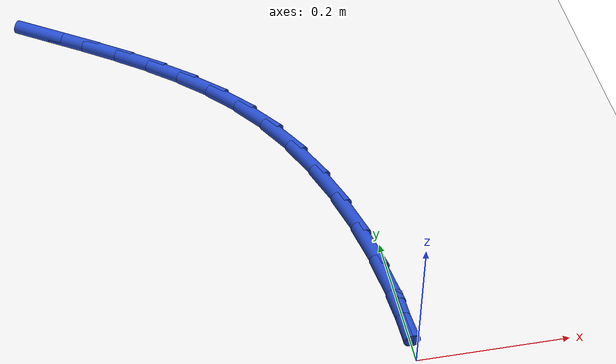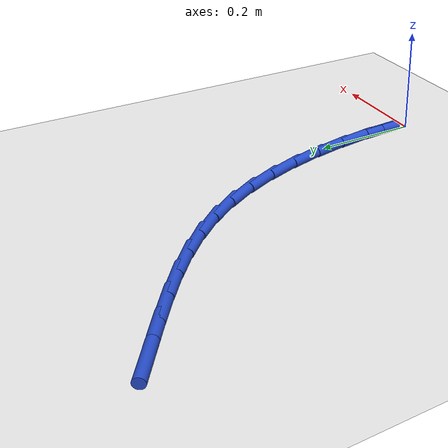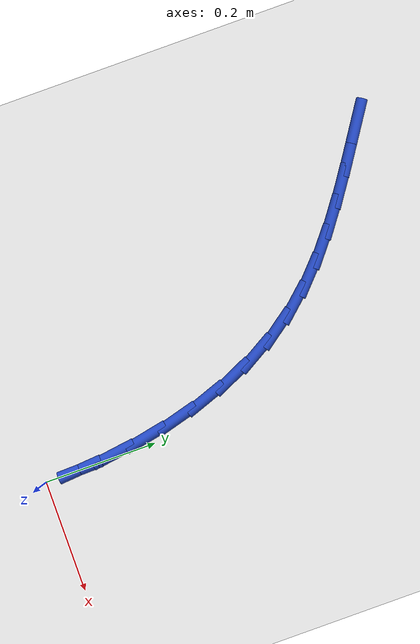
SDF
<sdf version="1.6">
 <world name="default">
  <model name="ground_plane">
   <static>1</static>
   <link name="link">
    <collision name="collision">
     <geometry><plane><normal>0 0 1</normal><size>100 100</size></plane></geometry>
     <surface><friction><ode><mu>100</mu><mu2>50</mu2></ode></friction></surface>
    </collision>
    <visual name="visual">
     <cast_shadows>0</cast_shadows>
     <geometry><plane><normal>0 0 1</normal><size>100 100</size></plane></geometry>
     <material>
      <script><uri>file://media/materials/scripts/gazebo.material</uri><name>Gazebo/WhiteGlow</name></script>
     </material>
    </visual>
   </link>
  </model>
  <model name="line">
   <link name="link_1">
    <pose>-0.0017537182974991226 0.06385840342809368 0.01 0 1.57 -1.489688759615366</pose>
    <collision name="collision">
     <geometry><cylinder><radius>0.01</radius><length>0.08</length></cylinder></geometry>
    </collision>
    <visual name="visual">
     <material>
      <script><name>Gazebo/Blue</name><uri>file://media/materials/scripts/gazebo.material</uri></script>
     </material>
     <geometry><cylinder><radius>0.01</radius><length>0.08</length></cylinder></geometry>
    </visual>
   </link>
   <link name="link_2">
    <pose>-0.006927672240215458 0.12750972022389526 0.01 0 1.57 -1.432894913182592</pose>
    <collision name="collision">
     <geometry><cylinder><radius>0.01</radius><length>0.08</length></cylinder></geometry>
    </collision>
    <visual name="visual">
     <material>
      <script><name>Gazebo/Blue</name><uri>file://media/materials/scripts/gazebo.material</uri></script>
     </material>
     <geometry><cylinder><radius>0.01</radius><length>0.08</length></cylinder></geometry>
    </visual>
   </link>
   <link name="link_3">
    <pose>-0.0156396296189688 0.19028400581950278 0.01 0 1.57 -1.371481381578688</pose>
    <collision name="collision">
     <geometry><cylinder><radius>0.01</radius><length>0.08</length></cylinder></geometry>
    </collision>
    <visual name="visual">
     <material>
      <script><name>Gazebo/Blue</name><uri>file://media/materials/scripts/gazebo.material</uri></script>
     </material>
     <geometry><cylinder><radius>0.01</radius><length>0.08</length></cylinder></geometry>
    </visual>
   </link>
   <link name="link_4">
    <pose>-0.028007358224578865 0.25151131564701446 0.01 0 1.57 -1.3037948199537506</pose>
    <collision name="collision">
     <geometry><cylinder><radius>0.01</radius><length>0.08</length></cylinder></geometry>
    </collision>
    <visual name="visual">
     <material>
      <script><name>Gazebo/Blue</name><uri>file://media/materials/scripts/gazebo.material</uri></script>
     </material>
     <geometry><cylinder><radius>0.01</radius><length>0.08</length></cylinder></geometry>
    </visual>
   </link>
   <link name="link_5">
    <pose>-0.04414862584786537 0.31052170513852834 0.01 0 1.57 -1.2279547797718704</pose>
    <collision name="collision">
     <geometry><cylinder><radius>0.01</radius><length>0.08</length></cylinder></geometry>
    </collision>
    <visual name="visual">
     <material>
      <script><name>Gazebo/Blue</name><uri>file://media/materials/scripts/gazebo.material</uri></script>
     </material>
     <geometry><cylinder><radius>0.01</radius><length>0.08</length></cylinder></geometry>
    </visual>
   </link>
   <link name="link_6">
    <pose>-0.06418120027964805 0.36664522972614266 0.01 0 1.57 -1.1418428558858824</pose>
    <collision name="collision">
     <geometry><cylinder><radius>0.01</radius><length>0.08</length></cylinder></geometry>
    </collision>
    <visual name="visual">
     <material>
      <script><name>Gazebo/Blue</name><uri>file://media/materials/scripts/gazebo.material</uri></script>
     </material>
     <geometry><cylinder><radius>0.01</radius><length>0.08</length></cylinder></geometry>
    </visual>
   </link>
   <link name="link_7">
    <pose>-0.08822284931074657 0.4192119448419556 0.01 0 1.57 -1.0431830768628036</pose>
    <collision name="collision">
     <geometry><cylinder><radius>0.01</radius><length>0.08</length></cylinder></geometry>
    </collision>
    <visual name="visual">
     <material>
      <script><name>Gazebo/Blue</name><uri>file://media/materials/scripts/gazebo.material</uri></script>
     </material>
     <geometry><cylinder><radius>0.01</radius><length>0.08</length></cylinder></geometry>
    </visual>
   </link>
   <link name="link_8">
    <pose>-0.11639132055818244 0.46755196282944506 0.01 0 1.57 -0.9345869780820233</pose>
    <collision name="collision">
     <geometry><cylinder><radius>0.01</radius><length>0.08</length></cylinder></geometry>
    </collision>
    <visual name="visual">
     <material>
      <script><name>Gazebo/Blue</name><uri>file://media/materials/scripts/gazebo.material</uri></script>
     </material>
     <geometry><cylinder><radius>0.01</radius><length>0.08</length></cylinder></geometry>
    </visual>
   </link>
   <link name="link_9">
    <pose>-0.1486997025978312 0.5112906448658519 0.01 0 1.57 -0.8332562088239406</pose>
    <collision name="collision">
     <geometry><cylinder><radius>0.01</radius><length>0.08</length></cylinder></geometry>
    </collision>
    <visual name="visual">
     <material>
      <script><name>Gazebo/Blue</name><uri>file://media/materials/scripts/gazebo.material</uri></script>
     </material>
     <geometry><cylinder><radius>0.01</radius><length>0.08</length></cylinder></geometry>
    </visual>
   </link>
   <link name="link_10">
    <pose>-0.1848125140091565 0.5510366870013421 0.01 0 1.57 -0.7467360245717931</pose>
    <collision name="collision">
     <geometry><cylinder><radius>0.01</radius><length>0.08</length></cylinder></geometry>
    </collision>
    <visual name="visual">
     <material>
      <script><name>Gazebo/Blue</name><uri>file://media/materials/scripts/gazebo.material</uri></script>
     </material>
     <geometry><cylinder><radius>0.01</radius><length>0.08</length></cylinder></geometry>
    </visual>
   </link>
   <link name="link_11">
    <pose>-0.22432179601489446 0.5876032478419554 0.01 0 1.57 -0.6776325591568183</pose>
    <collision name="collision">
     <geometry><cylinder><radius>0.01</radius><length>0.08</length></cylinder></geometry>
    </collision>
    <visual name="visual">
     <material>
      <script><name>Gazebo/Blue</name><uri>file://media/materials/scripts/gazebo.material</uri></script>
     </material>
     <geometry><cylinder><radius>0.01</radius><length>0.08</length></cylinder></geometry>
    </visual>
   </link>
   <link name="link_12">
    <pose>-0.2668195898377816 0.621803485993732 0.01 0 1.57 -0.6268030478571115</pose>
    <collision name="collision">
     <geometry><cylinder><radius>0.01</radius><length>0.08</length></cylinder></geometry>
    </collision>
    <visual name="visual">
     <material>
      <script><name>Gazebo/Blue</name><uri>file://media/materials/scripts/gazebo.material</uri></script>
     </material>
     <geometry><cylinder><radius>0.01</radius><length>0.08</length></cylinder></geometry>
    </visual>
   </link>
   <link name="link_13">
    <pose>-0.3118979367005541 0.6544505600627114 0.01 0 1.57 -0.5939340490633611</pose>
    <collision name="collision">
     <geometry><cylinder><radius>0.01</radius><length>0.08</length></cylinder></geometry>
    </collision>
    <visual name="visual">
     <material>
      <script><name>Gazebo/Blue</name><uri>file://media/materials/scripts/gazebo.material</uri></script>
     </material>
     <geometry><cylinder><radius>0.01</radius><length>0.08</length></cylinder></geometry>
    </visual>
   </link>
   <link name="link_14">
    <pose>-0.35914887782594834 0.6863576286549337 0.01 0 1.57 -0.5780957381406069</pose>
    <collision name="collision">
     <geometry><cylinder><radius>0.01</radius><length>0.08</length></cylinder></geometry>
    </collision>
    <visual name="visual">
     <material>
      <script><name>Gazebo/Blue</name><uri>file://media/materials/scripts/gazebo.material</uri></script>
     </material>
     <geometry><cylinder><radius>0.01</radius><length>0.08</length></cylinder></geometry>
    </visual>
   </link>
   <link name="link_15">
    <pose>-0.4081644544367004 0.7183378503764384 0.01 0 1.57 -0.5781117202915207</pose>
    <collision name="collision">
     <geometry><cylinder><radius>0.01</radius><length>0.08</length></cylinder></geometry>
    </collision>
    <visual name="visual">
     <material>
      <script><name>Gazebo/Blue</name><uri>file://media/materials/scripts/gazebo.material</uri></script>
     </material>
     <geometry><cylinder><radius>0.01</radius><length>0.08</length></cylinder></geometry>
    </visual>
   </link>
   <link name="link_131">
    <pose>-0.0017118329696408363 0.06391670735447533 0.01 0 1.57 -1.5440204817345882</pose>
    <collision name="collision">
     <geometry><cylinder><radius>0.01</radius><length>0.08</length></cylinder></geometry>
    </collision>
    <visual name="visual">
     <material>
      <script><name>Gazebo/Blue</name><uri>file://media/materials/scripts/gazebo.material</uri></script>
     </material>
     <geometry><cylinder><radius>0.01</radius><length>0.08</length></cylinder></geometry>
    </visual>
   </link>
  </model>
 </world>
</sdf>
